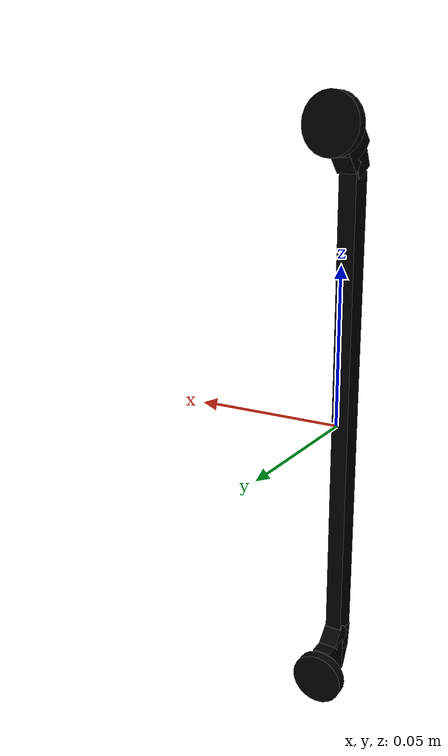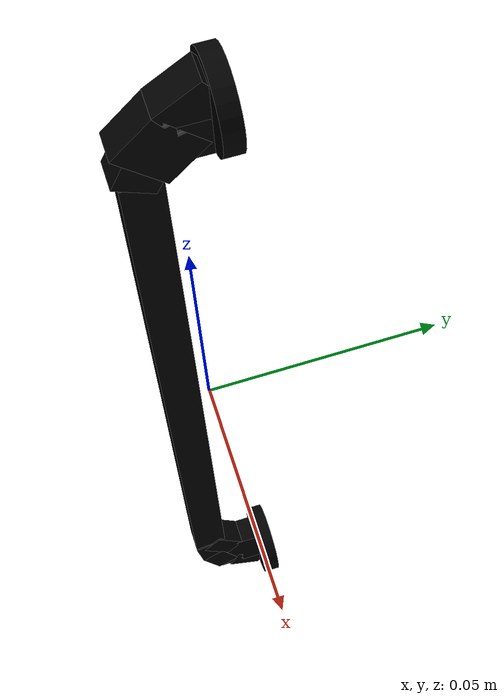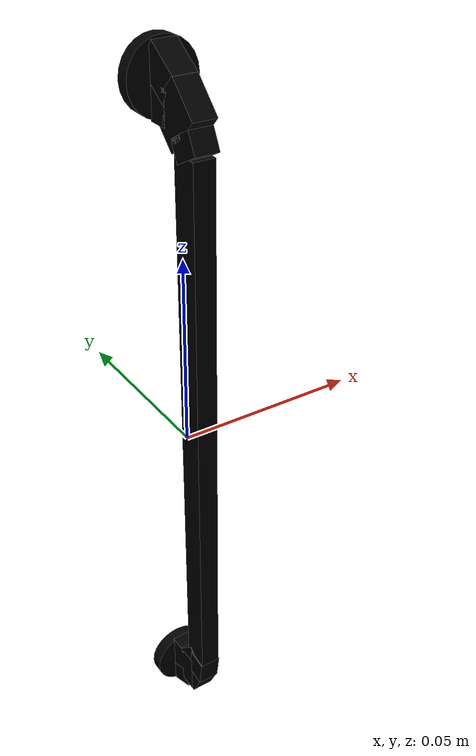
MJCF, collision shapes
<?xml version="1.0" ?>
<mujoco model="model">
    <compiler angle="radian"/>
    <asset>
        <mesh file="visuals/CabinetHandle015.obj" name="mesh"/>
        <texture file="visuals/T_BC001.png" name="tex" type="2d"/>
        <material name="mat" rgba="1 1 1 1.0" texture="tex" shininess="-1.0" specular="0.7"/>
    </asset>
    <default>
        <default class="visual">
            <geom conaffinity="0" contype="0" group="1" type="mesh"/>
        </default>
        <default class="collision">
            <geom group="0" rgba="0 0 0 0"/>
        </default>
        <default class="spawn">
            <geom group="0" rgba="0 0 0 0" contype="0" conaffinity="0"/>
            <site group="0" rgba="0 0 0 0"/>
        </default>
    </default>
    <worldbody>
        <body>
            <body name="object">
                <geom mesh="mesh" type="mesh" solimp="0.998 0.998 0.001" solref="0.001 1" density="100" friction="0.95 0.3 0.1" class="visual" material="mat"/>
                <geom class="collision" type="cylinder" pos="0.0001194776632473804 0.007997053675353527 0.08864034712314606" size="0.00877227820456028 0.0018166240770369768" quat="0.5000000596046448 0.5 0.5 -0.4999999701976776" name="handle_connector"/>
                <geom class="collision" type="cylinder" pos="0.0001194910510093905 0.007997053675353527 -0.08863884210586548" size="0.00877227820456028 0.0018166240770369768" quat="0.5000000596046448 0.5 0.5 -0.4999999701976776"/>
                <geom class="collision" type="box" pos="-6.4200960103732996e-09 -0.00220870110206306 0.08357667177915573" size="0.006126752123236656 0.003036418231204152 0.005277896765619516" quat="0.2747322916984558 0.6515538096427917 0.6515535712242126 -0.27473217248916626"/>
                <geom class="collision" type="box" pos="-6.56252963082693e-09 0.0033838895615190268 0.09083087742328644" size="0.004889516159892082 0.003036418231204152 0.004009944852441549" quat="0.19968222081661224 -0.6783266663551331 0.678326427936554 0.19968277215957642"/>
                <geom class="collision" type="box" pos="-6.0292206782719404e-09 0.0035676443949341774 0.08420039713382721" size="0.0030364184640347958 0.002880081534385681 0.004095360636711121" quat="1.0 0.0 0.0 0.0"/>
                <geom class="collision" type="box" pos="-5.5797780078137293e-05 -0.006091587711125612 -9.282679093303159e-05" size="0.002762017073109746 0.003779315622523427 0.07622762769460678" quat="1.0 0.0 0.0 0.0"/>
                <geom class="collision" type="box" pos="-7.218884601201125e-09 -0.006196361035108566 0.07816465944051743" size="0.002754163695499301 0.003036418231204152 0.004009945318102837" quat="0.36971670389175415 -0.6027516722679138 0.6027517914772034 0.36971643567085266"/>
                <geom class="collision" type="box" pos="6.8951977461040315e-09 0.0011967484606429935 -0.08567732572555542" size="0.006126752123236656 0.003036418231204152 0.005277896765619516" quat="0.5022985339164734 0.4976908266544342 0.4976864159107208 -0.5023029446601868"/>
                <geom class="collision" type="box" pos="7.594683992806495e-09 0.003207104280591011 -0.09213811904191971" size="0.002933198120445013 0.003036418231204152 0.004189207684248686" quat="0.6007931232452393 0.3728909492492676 0.3728909492492676 -0.6007930636405945"/>
                <geom class="collision" type="box" pos="5.507539757587665e-09 -0.002852807519957423 -0.07878603786230087" size="0.002933198120445013 0.003036418231204152 0.004189207684248686" quat="0.6551386117935181 0.26607027649879456 0.26607030630111694 -0.6551386117935181"/>
                <geom class="collision" type="box" pos="4.976444589743778e-09 -0.006358850747346878 -0.08002086728811264" size="0.002933198120445013 0.003036418231204152 0.004189207684248686" quat="0.7052523493766785 0.05117739737033844 0.05117756128311157 -0.7052523493766785"/>
                <geom class="collision" type="box" pos="5.891368282107123e-09 -0.004109691362828016 -0.08683449774980545" size="0.002933198120445013 0.003036418231204152 0.004189207684248686" quat="0.6880823969841003 0.16291871666908264 0.16291867196559906 -0.6880825757980347"/>
            </body>
        </body>
    </worldbody>
    <actuator/>
</mujoco>
